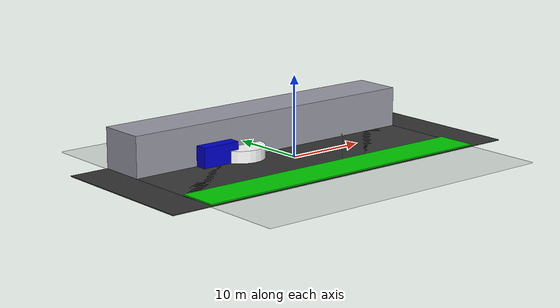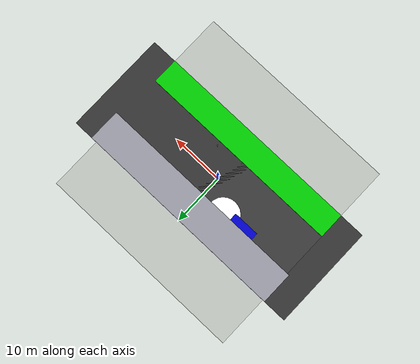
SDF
<?xml version="1.0"?>
<sdf version="1.9">
  <model name="campus">
    <static>true</static>

    <!-- ===== Ground plane ===== -->
    <link name="ground_plane">
      <collision name="collision">
        <geometry>
          <box><size>40 40 0.1</size></box>
        </geometry>
        <pose>0 0 0 0 0 0</pose>
      </collision>
      <visual name="visual">
        <geometry>
          <box><size>40 40 0.1</size></box>
        </geometry>
        <material>
          <ambient>0.35 0.35 0.35 0.2</ambient>
          <diffuse>0.35 0.35 0.35 0.2</diffuse>
        </material>
        <pose>0 0 -0.05 0 0 0</pose>
      </visual>
    </link>

    <!-- ===== Building block ===== -->
    <link name="building_block">
      <pose>0 7 2.5 0 0 0</pose>
      <collision name="collision">
        <geometry><box><size>40 6 5</size></box></geometry>
      </collision>
      <visual name="visual">
        <geometry><box><size>40 6 5</size></box></geometry>
        <material>
          <ambient>0.6 0.6 0.65 1</ambient>
          <diffuse>0.6 0.6 0.65 1</diffuse>
        </material>
      </visual>
    </link>

    <!-- ===== Road ===== -->
    <link name="road">
      <pose>0 0 0 0 0 0</pose>
      <collision name="coll">
        <geometry><box><size>50 20 0.1</size></box></geometry>
        <pose>0 0 0 0 0 0</pose>
      </collision>
      <visual name="vis">
        <geometry><box><size>50 20 0.1</size></box></geometry>
        <material>
          <ambient>0.2 0.2 0.2 1</ambient>
          <diffuse>0.2 0.2 0.2 1</diffuse>
        </material>
        <pose>0 0 -0.05 0 0 0</pose>
      </visual>
    </link>

    <!-- ===== Lamp pole ===== -->
    <link name="lamp_pole_1">
      <pose>4 -4 1.5 0 0 0</pose>
      <collision name="coll">
        <geometry><cylinder><radius>0.05</radius><length>3.0</length></cylinder></geometry>
      </collision>
      <visual name="vis">
        <geometry><cylinder><radius>0.05</radius><length>3.0</length></cylinder></geometry>
      </visual>
    </link>

    <!-- ===== Big lawn ===== -->
    <link name="big_lawn">
      <pose>0 -7.5 0.15 0 0 0</pose>
      <collision name="coll">
        <geometry><box><size>40 5 0.15</size></box></geometry>
      </collision>
      <visual name="vis">
        <geometry><box><size>40 5 0.15</size></box></geometry>
        <material>
          <ambient>0.0 0.6 0.0 1</ambient>
          <diffuse>0.0 0.8 0.0 1</diffuse>
        </material>
      </visual>
    </link>

    <!-- ===== Small building ===== -->
    <link name="small_building">
      <pose>-9 5 0 0 0 0</pose>
      <collision name="coll">
        <geometry><box><size>5 5 5</size></box></geometry>
      </collision>
      <visual name="vis">
        <geometry><box><size>5 5 5</size></box></geometry>
        <material>
          <ambient>0.0 0.0 0.6 1</ambient>
          <diffuse>0.0 0.0 0.8 1</diffuse>
        </material>
      </visual>
    </link>
    <!-- ===== road block ===== -->
    <link name="road block">
      <pose>-5 4 0 0 0 0</pose>
      <collision name="coll">
        <geometry>
                        <cylinder>
                            <radius>3</radius>
                            <length>3</length>
                        </cylinder>
        </geometry>
      </collision>
      <visual name="vis">
        <geometry>
                        <cylinder>
                            <radius>3</radius>
                            <length>3</length>
                        </cylinder>
        </geometry>
                    <material>
                        <ambient>1.0 1.0 1.0 1</ambient>
                        <diffuse>1.0 1.0 1.0 1</diffuse>
                        <specular>1.0 0.0 0.0 1</specular>
                    </material>
      </visual>
    </link>

  </model>

</sdf>
